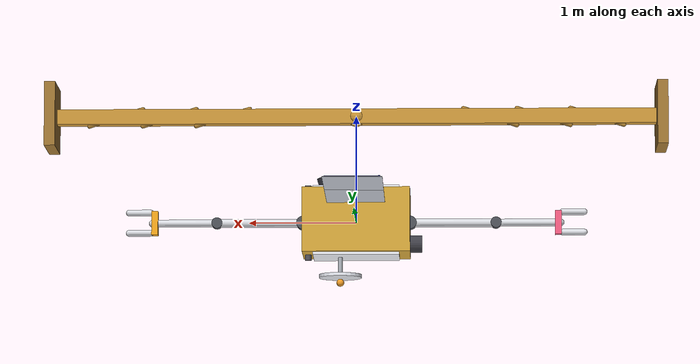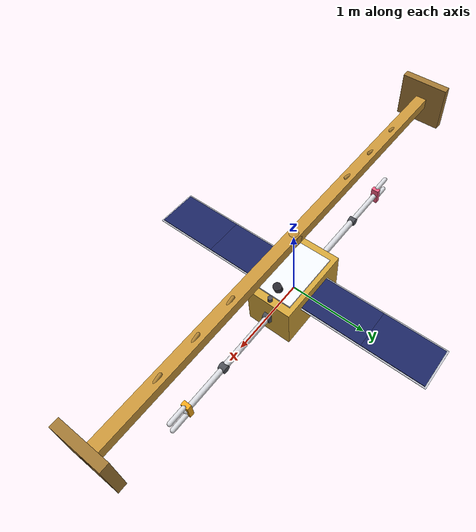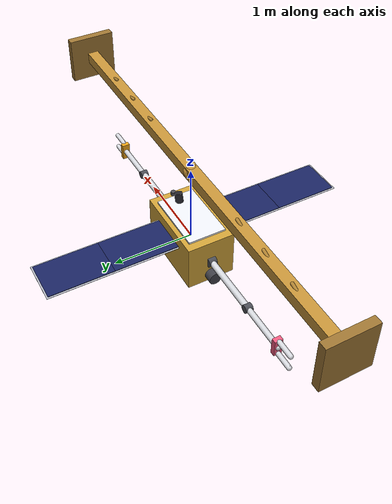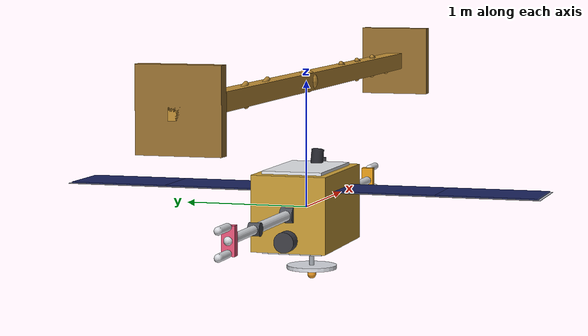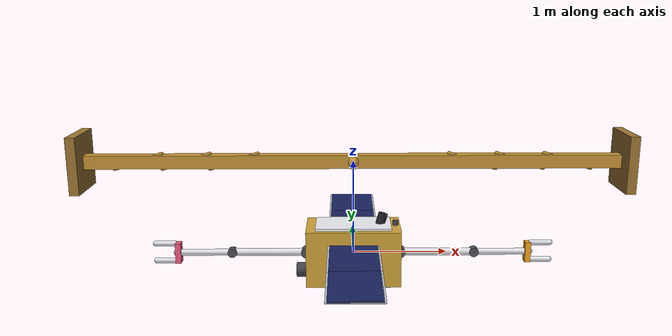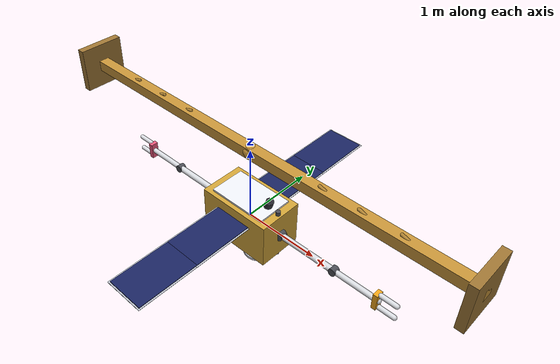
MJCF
<mujoco model="spacecraft_truss_freefly">
  <compiler angle="radian"/>
  <option timestep="0.01" gravity="0 0 0" integrator="implicitfast">
    <flag contact="enable"/>
  </option>

  <default>
    <joint damping="0.5" armature="0.01"/>
    <geom rgba="0.6 0.6 0.6 1" contype="0" conaffinity="0"/>
    <default class="detail">
      <geom contype="0" conaffinity="0" mass="0.01"/>
    </default>
    <default class="arm_act">
      <position kp="80" kv="14" forcerange="-40 40"/>
    </default>
    <default class="panel_cell">
      <geom type="box" size="0.25 0.4 0.005" mass="2"
            contype="0" conaffinity="0" rgba="0.10 0.14 0.38 1"/>
    </default>
    <default class="panel_frame">
      <geom type="box" size="0.27 0.42 0.002" mass="0.01"
            contype="0" conaffinity="0" rgba="0.74 0.76 0.80 1"/>
    </default>
    <default class="panel_hinge">
      <joint type="hinge" axis="1 0 0" range="-0.05 3.2"
             stiffness="2.0" damping="0.3" springref="0"/>
    </default>
    <default class="hug">
      <geom contype="2" conaffinity="4" condim="3"
            friction="2.6 0.1 0.002" solref="0.006 1" solimp="0.98 0.999 0.001"
            rgba="0.85 0.86 0.88 1"/>
    </default>
    <default class="truss_col">
      <geom contype="4" conaffinity="2" condim="3"
            friction="2.6 0.1 0.002" solref="0.006 1" solimp="0.98 0.999 0.001"/>
    </default>
  </default>

  <worldbody>
    <body name="bus" pos="0 0 0">
      <freejoint name="base"/>
      <geom name="bus" type="box" size="0.5 0.3 0.3" mass="300"
            rgba="0.82 0.64 0.22 1"/>
      <geom name="radiator_top" class="detail" type="box" size="0.40 0.24 0.012"
            pos="0 0 0.312" rgba="0.93 0.94 0.96 1"/>
      <geom name="radiator_bot" class="detail" type="box" size="0.40 0.24 0.012"
            pos="0 0 -0.312" rgba="0.93 0.94 0.96 1"/>
      <geom name="star_tracker" class="detail" type="cylinder" size="0.05 0.07"
            pos="0.30 0 0.36" zaxis="0.3 0 1" rgba="0.15 0.15 0.18 1"/>
      <geom name="antenna_boom" class="detail" type="cylinder" size="0.02 0.09"
            pos="0.15 0 -0.40" zaxis="0 0 1" rgba="0.65 0.67 0.70 1"/>
      <geom name="antenna_dish" class="detail" type="cylinder" size="0.20 0.015"
            pos="0.15 0 -0.50" zaxis="0 0 1" rgba="0.88 0.89 0.92 1"/>
      <geom name="antenna_feed" class="detail" type="sphere" size="0.035"
            pos="0.15 0 -0.56" rgba="0.95 0.62 0.15 1"/>
      <geom name="nozzle_main" class="detail" type="cylinder" size="0.08 0.06"
            pos="-0.55 0 -0.20" zaxis="1 0 0" rgba="0.25 0.25 0.28 1"/>
      <!-- RCS thruster nozzles (cosmetic; the 6-DOF control is via motors). -->
      <geom name="rcs_pz" class="detail" type="cylinder" size="0.03 0.05"
            pos="0.45 0 0.30" zaxis="0 0 1" rgba="0.3 0.3 0.33 1"/>
      <geom name="rcs_nz" class="detail" type="cylinder" size="0.03 0.05"
            pos="0.45 0 -0.30" zaxis="0 0 1" rgba="0.3 0.3 0.33 1"/>

      <!-- ============ Arm A (+X face) ============ -->
      <body name="link1_a" pos="0.5 0 0">
        <joint name="shoulder_a" type="hinge" axis="0 1 0" range="-3.14 3.14"/>
        <geom name="shoulder_housing_a" class="detail" type="cylinder"
              size="0.06 0.05" zaxis="0 1 0" rgba="0.30 0.31 0.34 1"/>
        <geom name="upper_a" type="capsule" fromto="0 0 0 0.8 0 0" size="0.04"
              mass="5" rgba="0.85 0.86 0.88 1"/>
        <body name="link2_a" pos="0.8 0 0">
          <joint name="elbow_a" type="hinge" axis="0 1 0" range="-3.14 3.14"/>
          <geom name="elbow_housing_a" class="detail" type="cylinder"
                size="0.05 0.045" zaxis="0 1 0" rgba="0.30 0.31 0.34 1"/>
          <geom name="fore_a" class="hug" type="capsule" fromto="0 0 0 0.6 0 0" size="0.035"
                mass="3"/>
          <body name="ee_a" pos="0.6 0 0">
            <joint name="wrist_a" type="hinge" axis="0 1 0" range="-2.2 2.2"/>
            <geom name="palm_a" class="detail" type="box" size="0.03 0.05 0.11"
                  pos="-0.02 0 0" rgba="0.95 0.65 0.10 1"/>
            <geom name="lowjaw_a" class="hug" type="capsule"
                  fromto="0.02 0 -0.09 0.22 0 -0.09" size="0.03" mass="0.4"/>
            <body name="jaw_a" pos="0 0 0">
              <joint name="grip_a" type="slide" axis="0 0 1" range="-0.03 0.12"/>
              <geom name="upjaw_a" class="hug" type="capsule"
                    fromto="0.02 0 0.10 0.22 0 0.10" size="0.03" mass="0.4"/>
            </body>
          </body>
        </body>
      </body>

      <!-- ============ Arm B (-X face, mirrored) ============ -->
      <body name="link1_b" pos="-0.5 0 0">
        <joint name="shoulder_b" type="hinge" axis="0 1 0" range="-3.14 3.14"/>
        <geom name="shoulder_housing_b" class="detail" type="cylinder"
              size="0.06 0.05" zaxis="0 1 0" rgba="0.30 0.31 0.34 1"/>
        <geom name="upper_b" type="capsule" fromto="0 0 0 -0.8 0 0" size="0.04"
              mass="5" rgba="0.85 0.86 0.88 1"/>
        <body name="link2_b" pos="-0.8 0 0">
          <joint name="elbow_b" type="hinge" axis="0 1 0" range="-3.14 3.14"/>
          <geom name="elbow_housing_b" class="detail" type="cylinder"
                size="0.05 0.045" zaxis="0 1 0" rgba="0.30 0.31 0.34 1"/>
          <geom name="fore_b" class="hug" type="capsule" fromto="0 0 0 -0.6 0 0" size="0.035"
                mass="3"/>
          <body name="ee_b" pos="-0.6 0 0">
            <joint name="wrist_b" type="hinge" axis="0 1 0" range="-2.2 2.2"/>
            <geom name="palm_b" class="detail" type="box" size="0.03 0.05 0.11"
                  pos="0.02 0 0" rgba="0.95 0.35 0.50 1"/>
            <geom name="lowjaw_b" class="hug" type="capsule"
                  fromto="-0.02 0 -0.09 -0.22 0 -0.09" size="0.03" mass="0.4"/>
            <body name="jaw_b" pos="0 0 0">
              <joint name="grip_b" type="slide" axis="0 0 1" range="-0.03 0.12"/>
              <geom name="upjaw_b" class="hug" type="capsule"
                    fromto="-0.02 0 0.10 -0.22 0 0.10" size="0.03" mass="0.4"/>
            </body>
          </body>
        </body>
      </body>

      <!-- ============ +Y / -Y solar wings (passive, non-colliding) ======== -->
      <body name="wp_0" pos="0 0.3 0.16">
        <joint name="hp_0" class="panel_hinge"/>
        <geom name="panel_p_0" pos="0 0.4 0" class="panel_cell"/>
        <geom name="frame_p_0" pos="0 0.4 -0.006" class="panel_frame"/>
        <body name="wp_1" pos="0 0.8 0">
          <joint name="hp_1" class="panel_hinge"/>
          <geom name="panel_p_1" pos="0 0.4 0" class="panel_cell"/>
          <geom name="frame_p_1" pos="0 0.4 -0.006" class="panel_frame"/>
        </body>
      </body>
      <body name="wn_0" pos="0 -0.3 0.16">
        <joint name="hn_0" class="panel_hinge"/>
        <geom name="panel_n_0" pos="0 -0.4 0" class="panel_cell"/>
        <geom name="frame_n_0" pos="0 -0.4 -0.006" class="panel_frame"/>
        <body name="wn_1" pos="0 -0.8 0">
          <joint name="hn_1" class="panel_hinge"/>
          <geom name="panel_n_1" pos="0 -0.4 0" class="panel_cell"/>
          <geom name="frame_n_1" pos="0 -0.4 -0.006" class="panel_frame"/>
        </body>
      </body>
    </body>

    <body name="truss" pos="0 0 1.0">
      <freejoint name="truss_free"/>
      <geom name="truss_hub" class="truss_col" type="sphere" size="0.09" mass="0.6"
            rgba="0.78 0.58 0.22 1"/>
      <geom name="truss_spar" class="truss_col" type="box" size="2.9 0.07 0.07"
            mass="4" rgba="0.78 0.58 0.22 1"/>
      <geom name="truss_end_p" class="truss_col" type="box" pos="2.85 0 0"
            size="0.05 0.3 0.3" mass="0.4" rgba="0.62 0.46 0.20 1"/>
      <geom name="truss_end_n" class="truss_col" type="box" pos="-2.85 0 0"
            size="0.05 0.3 0.3" mass="0.4" rgba="0.62 0.46 0.20 1"/>
      <!-- Decorative lattice so the spar reads as a truss. -->
      <geom name="lat_p0" class="detail" type="capsule"
            fromto="1.0 0 0.08 1.5 0 -0.08" size="0.02" rgba="0.7 0.52 0.2 1"/>
      <geom name="lat_p1" class="detail" type="capsule"
            fromto="1.5 0 0.08 2.0 0 -0.08" size="0.02" rgba="0.7 0.52 0.2 1"/>
      <geom name="lat_p2" class="detail" type="capsule"
            fromto="2.0 0 0.08 2.5 0 -0.08" size="0.02" rgba="0.7 0.52 0.2 1"/>
      <geom name="lat_n0" class="detail" type="capsule"
            fromto="-1.0 0 0.08 -1.5 0 -0.08" size="0.02" rgba="0.7 0.52 0.2 1"/>
      <geom name="lat_n1" class="detail" type="capsule"
            fromto="-1.5 0 0.08 -2.0 0 -0.08" size="0.02" rgba="0.7 0.52 0.2 1"/>
      <geom name="lat_n2" class="detail" type="capsule"
            fromto="-2.0 0 0.08 -2.5 0 -0.08" size="0.02" rgba="0.7 0.52 0.2 1"/>
    </body>
  </worldbody>

  <actuator>
    <!-- Arm joints (position-controlled). -->
    <position name="shoulder_a_pos" class="arm_act" joint="shoulder_a" ctrlrange="-3.14 3.14"/>
    <position name="elbow_a_pos" class="arm_act" joint="elbow_a" ctrlrange="-3.14 3.14"/>
    <position name="shoulder_b_pos" class="arm_act" joint="shoulder_b" ctrlrange="-3.14 3.14"/>
    <position name="elbow_b_pos" class="arm_act" joint="elbow_b" ctrlrange="-3.14 3.14"/>
    <position name="wrist_a_pos" class="arm_act" joint="wrist_a" ctrlrange="-2.2 2.2"/>
    <position name="wrist_b_pos" class="arm_act" joint="wrist_b" ctrlrange="-2.2 2.2"/>
    <position name="grip_a_pos" joint="grip_a" kp="900" kv="40" forcerange="-300 300" ctrlrange="-0.03 0.12"/>
    <position name="grip_b_pos" joint="grip_b" kp="900" kv="40" forcerange="-300 300" ctrlrange="-0.03 0.12"/>
    <!-- Bus 6-DOF control: 3 thruster forces (world frame) + 3 reaction-wheel
         torques (body frame), as ideal motors on the free joint. ctrlrange is
         the force/torque limit. -->
    <motor name="thrust_x" joint="base" gear="1 0 0 0 0 0" ctrlrange="-80 80"/>
    <motor name="thrust_y" joint="base" gear="0 1 0 0 0 0" ctrlrange="-80 80"/>
    <motor name="thrust_z" joint="base" gear="0 0 1 0 0 0" ctrlrange="-80 80"/>
    <motor name="rw_x" joint="base" gear="0 0 0 1 0 0" ctrlrange="-40 40"/>
    <motor name="rw_y" joint="base" gear="0 0 0 0 1 0" ctrlrange="-40 40"/>
    <motor name="rw_z" joint="base" gear="0 0 0 0 0 1" ctrlrange="-40 40"/>
  </actuator>
</mujoco>
